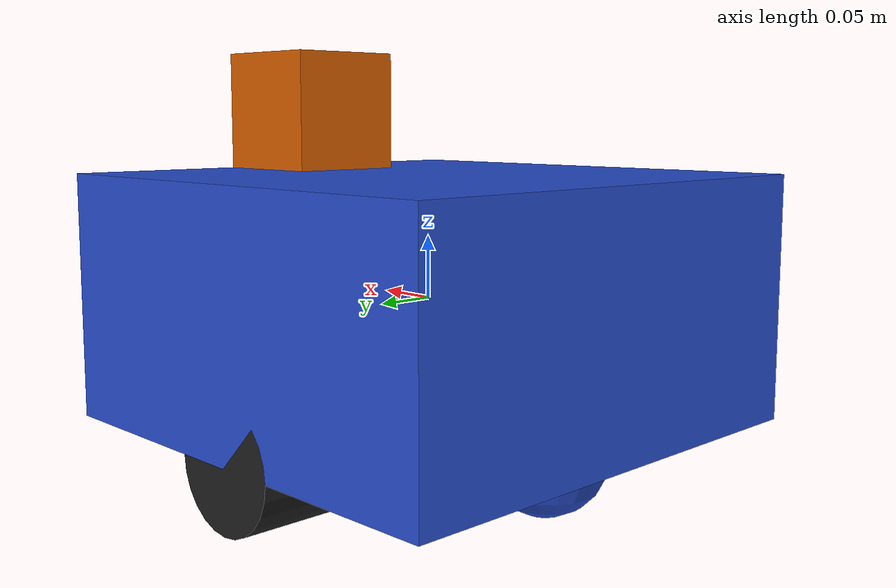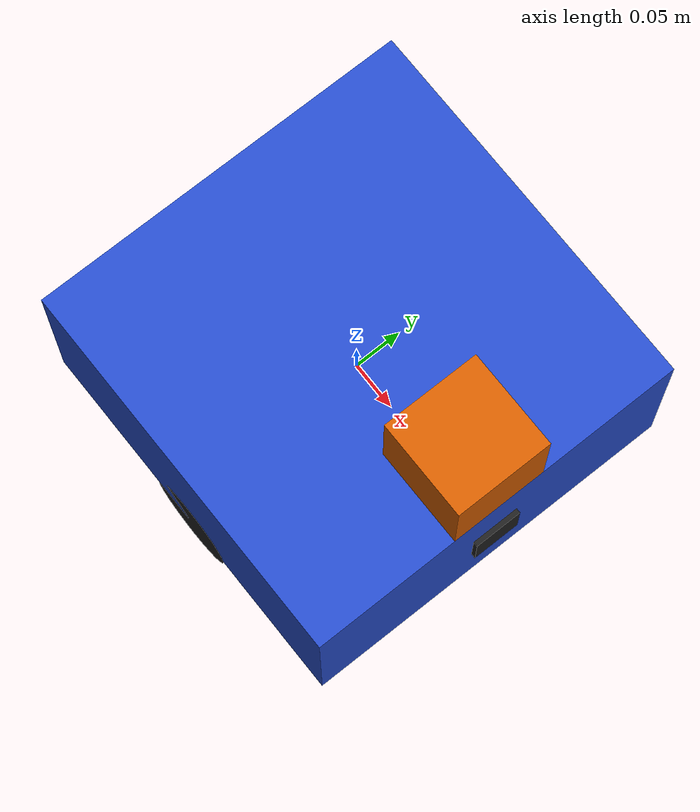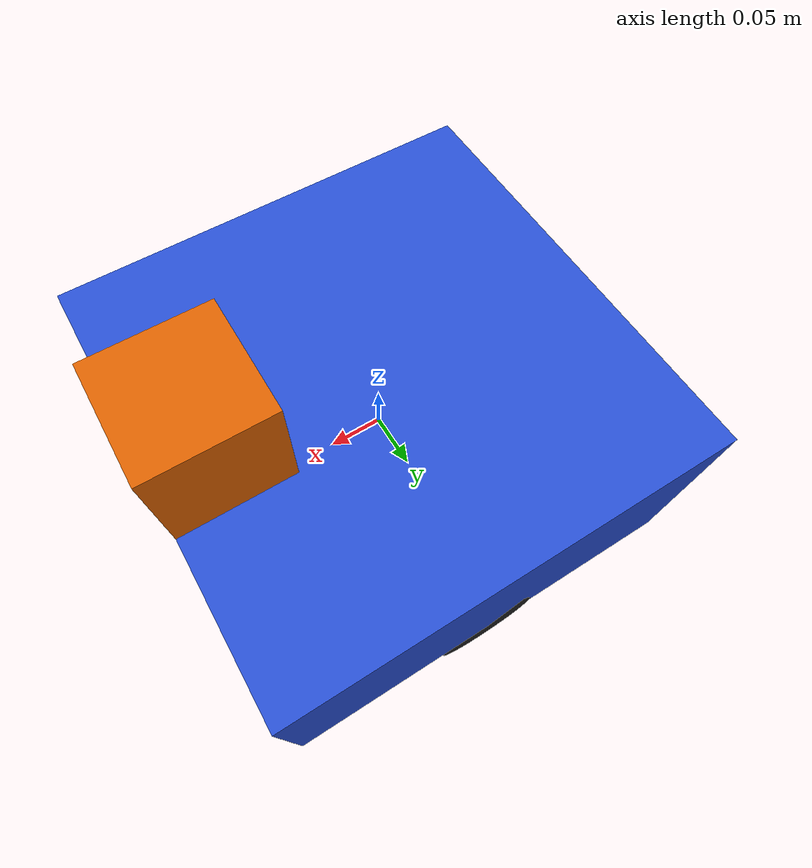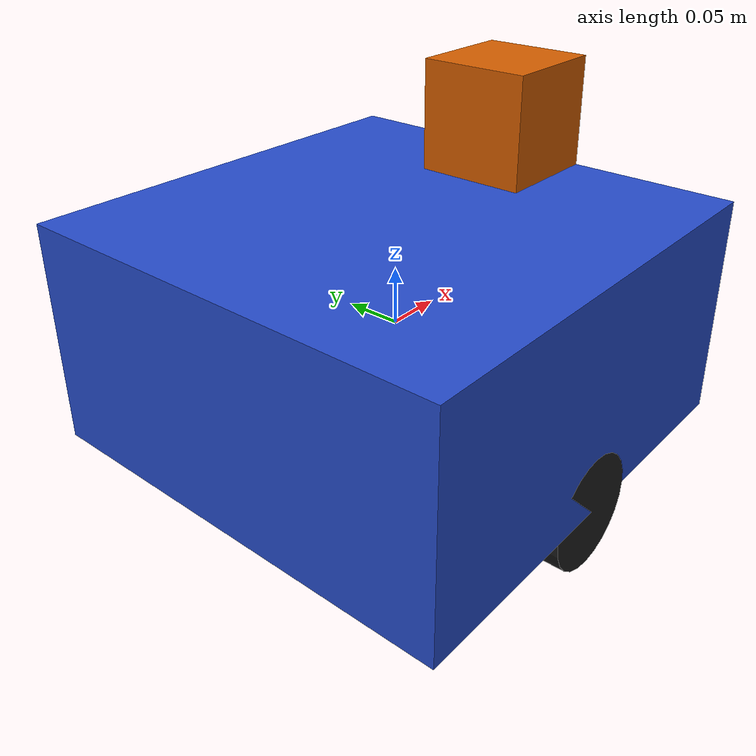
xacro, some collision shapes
<?xml version='1.0'?>

<robot name="robot" xmlns:xacro="http://www.ros.org/wiki/xacro">
  <xacro:include filename="$(find robot)/urdf/robot.gazebo" />

  <link name="robot_footprint"></link>

  <joint name="robot_footprint_joint" type="fixed">
    <origin xyz="0 0 0" rpy="0 0 0" />
    <parent link="robot_footprint"/>
    <child link="chassis" />
  </joint>

  <link name="chassis">
    <pose>0 0 0.05 0 0 0</pose>

    <inertial>
      <mass value="15.0"/>
      <origin xyz="0 0 0" rpy="0 0 0"/>
      <inertia
          ixx="0.1" ixy="0.0" ixz="0.0"
          iyy="0.1" iyz="0.0"
          izz="0.1"
      />
    </inertial>

    <collision name="chassis_collision">
      <origin xyz="0 0 0" rpy="0 0 0"/>
      <geometry>
        <box size="0.4 0.4 0.2"/>
      </geometry>
    </collision>

    <visual name="chassis_visual">
      <origin xyz="0 0 0" rpy="0 0 0"/>
      <geometry>
        <box size="0.4 0.4 0.2"/>
      </geometry>
    </visual>

    <collision name='front_caster_collision'>
      <origin xyz="0.15 0 -0.1" rpy=" 0 0 0"/>
      <geometry>
        <sphere radius="0.0499"/>
      </geometry>
    </collision>

    <visual name='front_caster_visual'>
      <origin xyz="0.15 0 -0.1" rpy=" 0 0 0"/>
      <geometry>
        <sphere radius="0.05"/>
      </geometry>
    </visual>

    <collision name='back_caster_collision'>
      <origin xyz="-0.125 0 -0.1" rpy=" 0 0 0"/>
      <geometry>
        <sphere radius="0.0499"/>
      </geometry>
    </collision>

    <visual name='back_caster_visual'>
      <origin xyz="-0.125 0 -0.1" rpy=" 0 0 0"/>
      <geometry>
        <sphere radius="0.05"/>
      </geometry>
    </visual>
  </link>

  <joint type="continuous" name="left_wheel_hinge">
    <origin xyz="0 0.15 -0.1" rpy="0 0 0"/>
    <child link="left_wheel"/>
    <parent link="chassis"/>
    <axis xyz="0 1 0" rpy="0 0 0"/>
    <limit effort="10000" velocity="1000"/>
    <dynamics damping="1.0" friction="1.0"/>
  </joint>

  <joint type="continuous" name="right_wheel_hinge">
    <origin xyz="0 -0.15 -0.1" rpy="0 0 0"/>
    <child link="right_wheel"/>
    <parent link="chassis"/>
    <axis xyz="0 1 0" rpy="0 0 0"/>
    <limit effort="10000" velocity="1000"/>
    <dynamics damping="1.0" friction="1.0"/>
  </joint>

  <link name="left_wheel">
    <inertial>
      <mass value="5"/>
      <origin xyz="0 0 0" rpy="0 1.5707 1.5707" />
      <inertia
          ixx="0.1" ixy="0" ixz="0"
          iyy="0.1" iyz="0"
          izz="0.1"
      />
    </inertial>

    <collision name='left_wheel_collision'>
      <origin xyz="0 0 0" rpy="0 1.5707 1.5707" />
      <geometry>
        <cylinder radius="0.05" length="0.1"/>
      </geometry>
    </collision>

    <visual name='left_wheel_visual'>
      <origin xyz="0 0 0" rpy="0 1.5707 1.5707" />
      <geometry>
        <cylinder radius="0.05" length="0.1"/>
      </geometry>
    </visual>
  </link>

  <link name="right_wheel">
    <inertial>
      <mass value="5"/>
      <origin xyz="0 0 0" rpy="0 1.5707 1.5707" />
      <inertia
          ixx="0.1" ixy="0" ixz="0"
          iyy="0.1" iyz="0"
          izz="0.1"
      />
    </inertial>

    <collision name='right_wheel_collision'>
      <origin xyz="0 0 0" rpy="0 1.5707 1.5707" />
      <geometry>
        <cylinder radius="0.05" length="0.1"/>
      </geometry>
    </collision>

    <visual name='right_wheel_visual'>
      <origin xyz="0 0 0" rpy="0 1.5707 1.5707" />
      <geometry>
        <cylinder radius="0.05" length="0.1"/>
      </geometry>
    </visual>
  </link>

  <joint type="fixed" name="camera_joint">
    <origin xyz="0.2025 0 0" rpy="0 0 0"/>
    <child link="camera"/>
    <parent link="chassis"/>
    <axis xyz="0 1 0" rpy="0 0 0"/>
  </joint>

  <link name='camera'>
    <inertial>
      <mass value=".1"/>
      <origin xyz="0 0 0" rpy="0 0 0" />
      <inertia
          ixx="1e-6" ixy="0" ixz="0"
          iyy="1e-6" iyz="0"
          izz="1e-6"
      />
    </inertial>

    <collision name="camera_collision">
      <origin xyz="0 0 0" rpy="0 0 0"/>
      <geometry>
        <box size="0.005 0.05 0.05"/>
      </geometry>
    </collision>

    <visual name="camera_visual">
      <origin xyz="0 0 0" rpy="0 0 0"/>
      <geometry>
        <box size="0.005 0.05 0.05"/>
      </geometry>
    </visual>
  </link>

  <link name='hokuyo'>
    <inertial>
      <mass value="1e-5"/>
      <origin xyz="0 0 0" rpy="0 0 0" />
      <inertia
          ixx="1e-6" ixy="0" ixz="0"
          iyy="1e-6" iyz="0"
          izz="1e-6"
      />
    </inertial>

    <collision name="hokuyo_collision">
      <origin xyz="0 0 0" rpy="0 0 0"/>
      <geometry>
        <box size="0.1 0.1 0.1"/>
      </geometry>
    </collision>

    <visual name="hokuyo_visual">
      <origin xyz="0 0 0" rpy="0 0 0"/>
      <geometry>
        <mesh filename="package://robot/meshes/hokuyo.dae"/>
      </geometry>
    </visual>
  </link>

  <joint type="fixed" name="hokuyo_joint">
    <origin xyz="0.15 0 0.15" rpy="0 0 0"/>
    <child link="hokuyo"/>
    <parent link="chassis"/>
    <axis xyz="0 1 0" rpy="0 0 0"/>
  </joint>

  <gazebo reference="chassis">
    <material>Gazebo/Blue</material>
  </gazebo>

  <gazebo reference="wheel_mount">
    <material>Gazebo/Blue</material>
  </gazebo>

  <gazebo reference="left_wheel">
    <material>Gazebo/Black</material>
  </gazebo>

  <gazebo reference="right_wheel">
    <material>Gazebo/Black</material>
  </gazebo>

  <gazebo reference="camera">
    <material>Gazebo/Black</material>
  </gazebo>
</robot>
